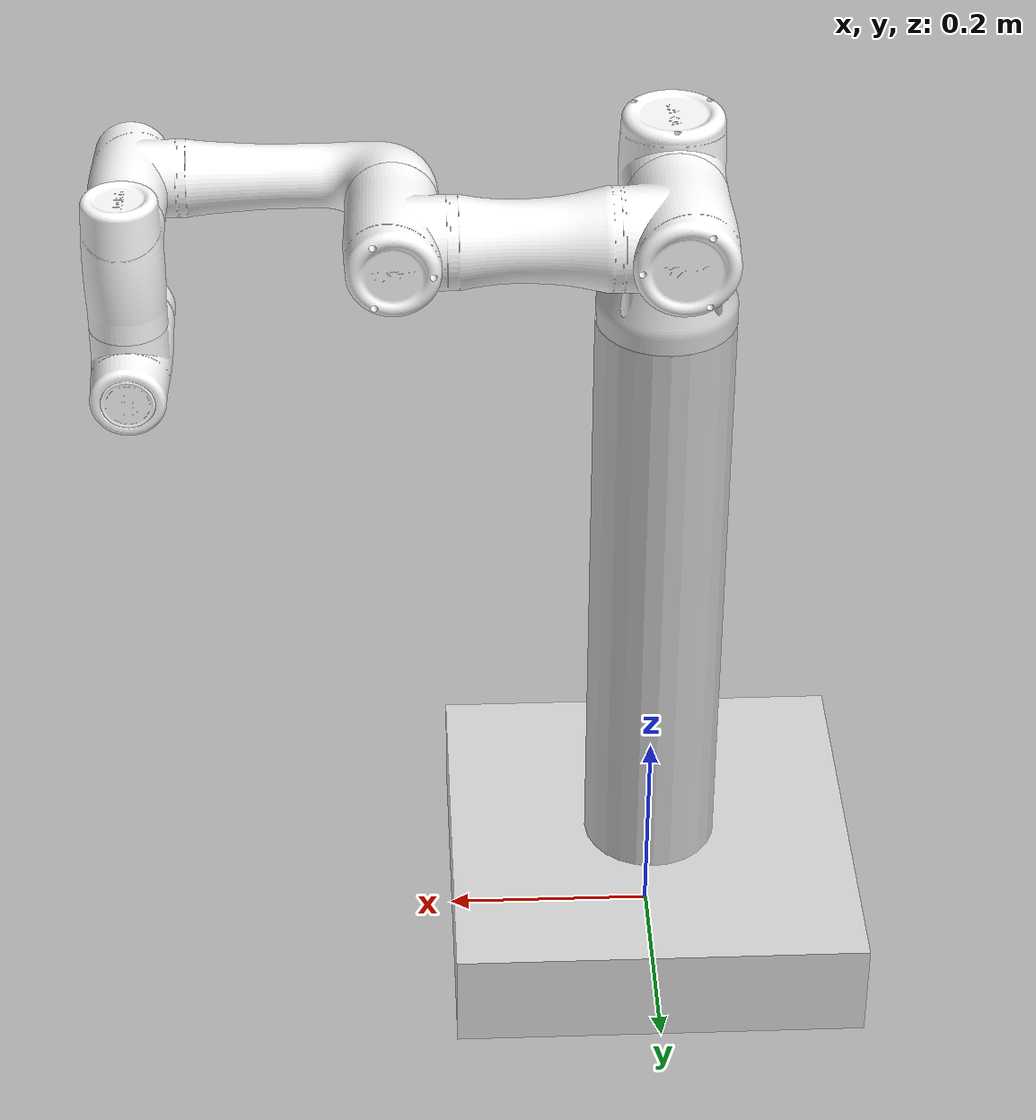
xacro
<?xml version="1.0" encoding="utf-8"?>
<robot name="jaka_zu3" xmlns:xacro="http://www.ros.org/wiki/xacro">
  <xacro:include filename="gazebo_control.xacro" />
  <xacro:include filename="camera_gazebo.xacro" />

  <link name="world" />

  <joint name="world_joint" type="fixed">
    <parent link="world" />
    <child link = "base_footprint" />
    <origin xyz="0.0 0.0 0.0" rpy="0.0 0.0 0.0" />
  </joint>

  <link name="base_footprint">
    <visual>
      <geometry>
        <sphere radius="0.001" />
      </geometry>
      <oringin xyz="0 0 0" rpy="0 0 0" />
    </visual>
  </link>
  <gazebo reference="base_footprint">
    <meterial>Gazebo/Grey</meterial>
  </gazebo>

  <link name="plain_link" >
    <visual>
      <origin xyz="0 0 0" rpy="0 0 0" />
      <geometry>
        <box size="0.4 0.4 0.1" />
        <origin xyz="0 0 0" rpy="0 0 0" />
      </geometry>
      <material
        name="plaincolor">
        <color rgba="0.84706 0.84706 0.84706 1" />
      </material>
    </visual>
    <collision>
      <origin xyz="0 0 0" rpy="0 0 0" />
      <geometry>
        <box size="0.4 0.4 0.1" />
      </geometry>
    </collision>
    <inertial>
      <origin xyz="0 0 0" rpy="0 0 0" />
      <mass value="50.0" />
      <inertia ixx="0.70833" ixy="0.0" ixz="0.0"
               iyy="1.33333" iyz="0.0" izz="0.70833" />
    </inertial>
  </link>
  <gazebo reference="plain_link">
    <meterial>Gazebo/Grey</meterial>
  </gazebo>

  <joint name="base2plain" type="fixed">
    <parent link="base_footprint" />
    <child link="plain_link" />
    <origin xyz="0 0 0.05" rpy="0 0 0" />
  </joint>

  <link name="cylinder_link">
    <visual>
      <geometry>
        <cylinder radius="0.065" length="0.6" />
      </geometry>
      <origin xyz="0 0 0" rpy="0 0 0" />
      <material name="gray">
        <color rgba="0.8 0.8 0.8 1" />
      </material>
    </visual>
    <collision>
      <geometry>
        <cylinder radius="0.065" length="0.6" />
      </geometry>
      <origin xyz="0 0 0" rpy="0 0 0" />
    </collision>
    <inertial>
      <origin xyz="0 0 0" rpy="0 0 0" />
      <mass value="20.0" />
      <inertia ixx="0.621125" ixy="0.0" ixz="0.0"
               iyy="0.621125" iyz="0.0" izz="4.225" />
    </inertial>
  </link>
  <gazebo reference="plain_link">
    <meterial>Gazebo/Grey</meterial>
  </gazebo>

  <joint name="plain2cylinder" type="fixed">
    <parent link="plain_link" />
    <child link="cylinder_link" />
    <origin xyz="0 0 0.35" rpy="0 0 0" />
  </joint>

  <link name="Link_0">
    <inertial>
      <origin
          xyz="0 0 0"
          rpy="0 0 0" />
      <mass
          value="0.46393" />
      <inertia
          ixx="0.00064494"
          ixy="-1.0227E-07"
          ixz="-1.0724E-05"
          iyy="0.00065157"
          iyz="3.7859E-07"
          izz="0.00083278" />
    </inertial>
    <visual>
      <origin xyz="0.0 0.0 0" rpy="0 0 0" />
      <geometry>
        <mesh filename="package://jaka_zu3_myurdf/meshes/visual/Link_0.dae" />
      </geometry>
      <material
        name="Link_0Color">
        <color
          rgba="0.84706 0.84706 0.84706 1" />
      </material>
    </visual>
    <collision>
      <origin xyz="0 0 0" rpy="0 0 0" />
      <geometry>
        <mesh filename="package://jaka_zu3_myurdf/meshes/collision/Link_0.STL" />
      </geometry>
    </collision>
  </link>
  <gazebo reference="Link_0">
    <meterial>Gazebo/Grey</meterial>
  </gazebo>

  <joint name="cylinder2base" type="fixed">
    <parent link="cylinder_link" />
    <child link="Link_0" />
    <origin xyz="0 0 0.3" rpy="0 0 0" />
  </joint>

  <link name="Link_1">
    <inertial>
        <origin
          xyz="0 0 0"
          rpy="0 0 0" />
        <mass
          value="0.88365" />
        <inertia
          ixx="0.0015634"
          ixy="1.5495E-08"
          ixz="5.6443E-09"
          iyy="0.0015047"
          iyz="-9.0168E-06"
          izz="0.0010527" />
      </inertial>

    <visual>
      <origin xyz="0 0 0" rpy="0 0 0" />
      <geometry>
        <mesh filename="package://jaka_zu3_myurdf/meshes/visual/Link_1.dae" />
      </geometry>
      <material
        name="Link_1Color">
        <color
          rgba="1 1 1 1" />
      </material>
    </visual>
    <collision>
      <origin xyz="0 0 0" rpy="0 0 0" />
      <geometry>
        <mesh filename="package://jaka_zu3_myurdf/meshes/collision/Link_1.STL" />
      </geometry>
    </collision>
  </link>
  <gazebo reference="Link_1">
    <meterial>Gazebo/Grey</meterial>
  </gazebo>

  <joint name="joint_1" type="revolute">
    <origin xyz="0 0 0.15055" rpy="0 0 0" />
    <parent link="Link_0" />
    <child link="Link_1" />
    <axis xyz="0 0 1" />
    <limit
      lower="-4.71"
      upper="4.71"
      effort="300"
      velocity="3.14" />
    <dynamics
      damping="50"
      friction="1" />
  </joint>
  <transmission name="trans1">
    <type>transmission_interface/SimpleTransmission</type>
    <joint name="joint_1">
      <hardwareInterface>hardware_interface/EffortJointInterface</hardwareInterface>
    </joint>
    <actuator name="motor1">
      <hardwareInterface>hardware_interface/EffortJointInterface</hardwareInterface>
      <mechanicalReduction>1</mechanicalReduction>
    </actuator>
  </transmission>

  <link name="Link_2">
    <inertial>
        <origin
          xyz="0.114 -5.5358E-07 -0.11162"
          rpy="0 0 0" />
        <mass
          value="2.3202" />
        <inertia
          ixx="1"
          ixy="0"
          ixz="0"
          iyy="1"
          iyz="0"
          izz="1" />
      </inertial>
    <visual>
      <origin xyz="0 0 0" rpy="0 0 0" />
      <geometry>
        <mesh filename="package://jaka_zu3_myurdf/meshes/visual/Link_2.dae" />
      </geometry>
      <material
        name="Link_2Color">
        <color
          rgba="1 1 1 1" />
      </material>
    </visual>
    <collision>
      <origin xyz="0 0 0" rpy="0 0 0" />
      <geometry>
        <mesh filename="package://jaka_zu3_myurdf/meshes/collision/Link_2.STL" />
      </geometry>
    </collision>
  </link>
  <gazebo reference="Link_2">
    <meterial>Gazebo/Grey</meterial>
  </gazebo>

  <joint name="joint_2" type="revolute">
    <origin xyz="0 0 0" rpy="1.5708 0 0" />
    <parent link="Link_1" />
    <child link="Link_2" />
    <axis xyz="0 0 1" />
    <limit
      lower="-1.48"
      upper="4.62"
      effort="300"
      velocity="3.14" />
    <dynamics
      damping="50"
      friction="1" />
  </joint>
  <transmission name="trans2">
    <type>transmission_interface/SimpleTransmission</type>
    <joint name="joint_2">
      <hardwareInterface>hardware_interface/EffortJointInterface</hardwareInterface>
    </joint>
    <actuator name="motor2">
      <hardwareInterface>hardware_interface/EffortJointInterface</hardwareInterface>
      <mechanicalReduction>1</mechanicalReduction>
    </actuator>
  </transmission>

  <link name="Link_3">
    <inertial>
        <origin
          xyz="0 0 0"
          rpy="0 0 0" />
        <mass
          value="1.2034" />
        <inertia
          ixx="1"
          ixy="0"
          ixz="0"
          iyy="1"
          iyz="0"
          izz="1" />
      </inertial>

    <visual>
      <origin xyz="0 0 0" rpy="0 0 0" />
      <geometry>
        <mesh filename="package://jaka_zu3_myurdf/meshes/visual/Link_3.dae" />
      </geometry>
      <material
        name="Link_3Color">
        <color
          rgba="1 1 1 1" />
      </material>
    </visual>
    <collision>
      <origin xyz="0 0 0" rpy="0 0 0" />
      <geometry>
        <mesh filename="package://jaka_zu3_myurdf/meshes/collision/Link_3.STL" />
      </geometry>
    </collision>
  </link>
  <gazebo reference="Link_3">
    <meterial>Gazebo/Grey</meterial>
  </gazebo>

  <joint name="joint_3" type="revolute">
    <origin xyz="0.246 0 0" rpy="0 0 0" />
    <parent link="Link_2" />
    <child link="Link_3" />
    <axis xyz="0 0 1" />
    <limit lower="-3.05" upper="3.05" effort="330" velocity="3.14" />
    <dynamics damping="50" friction="1" />
  </joint>
  <transmission name="trans3">
    <type>transmission_interface/SimpleTransmission</type>
    <joint name="joint_3">
      <hardwareInterface>hardware_interface/EffortJointInterface</hardwareInterface>
    </joint>
    <actuator name="motor3">
      <hardwareInterface>hardware_interface/EffortJointInterface</hardwareInterface>
      <mechanicalReduction>1</mechanicalReduction>
    </actuator>
  </transmission>

  <link name="Link_4">
    <inertial>
        <origin
          xyz="6.5395E-08 -0.014051 0.0031609"
          rpy="0 0 0" />
        <mass
          value="0.49334" />
        <inertia
          ixx="1"
          ixy="0"
          ixz="0"
          iyy="1"
          iyz="0"
          izz="1" />
      </inertial>

    <visual>
      <origin xyz="0 0 0" rpy="0 0 0" />
      <geometry>
        <mesh filename="package://jaka_zu3_myurdf/meshes/visual/Link_4.dae" />
      </geometry>
      <material
        name="Link_4Color">
        <color
          rgba="1 1 1 1" />
      </material>
    </visual>
    <collision>
      <origin xyz="0 0 0" rpy="0 0 0" />
      <geometry>
        <mesh filename="package://jaka_zu3_myurdf/meshes/collision/Link_4.STL" />
      </geometry>
    </collision>
  </link>
  <gazebo reference="Link_4">
    <meterial>Gazebo/Grey</meterial>
  </gazebo>

  <joint name="joint_4" type="revolute">
    <origin xyz="0.228 0 -0.113" rpy="0 0 0" />
    <parent link="Link_3" />
    <child link="Link_4" />
    <axis xyz="0 0 1" />
    <limit lower="-1.48" upper="4.62" effort="330" velocity="3.14" />
    <dynamics damping="50" friction="1" />
  </joint>
  <transmission name="trans4">
    <type>transmission_interface/SimpleTransmission</type>
    <joint name="joint_4">
      <hardwareInterface>hardware_interface/EffortJointInterface</hardwareInterface>
    </joint>
    <actuator name="motor4">
      <hardwareInterface>hardware_interface/EffortJointInterface</hardwareInterface>
      <mechanicalReduction>1</mechanicalReduction>
    </actuator>
  </transmission>

  <link name="Link_5">
    <inertial>
        <origin
          xyz="2.5684E-07 0.0068642 -0.0021581"
          rpy="0 0 0" />
        <mass
          value="0.55082" />
        <inertia
          ixx="1"
          ixy="0"
          ixz="0"
          iyy="1"
          iyz="0"
          izz="1" />
      </inertial>

    <visual>
      <origin xyz="0 0 0" rpy="0 0 0" />
      <geometry>
        <mesh filename="package://jaka_zu3_myurdf/meshes/visual/Link_5.dae" />
      </geometry>
      <material
        name="Link_5Color">
        <color
          rgba="1 1 1 1" />
      </material>
    </visual>
    <collision>
      <origin xyz="0 0 0" rpy="0 0 0" />
      <geometry>
        <mesh filename="package://jaka_zu3_myurdf/meshes/collision/Link_5.STL" />
      </geometry>
    </collision>
  </link>
  <gazebo reference="Link_5">
    <meterial>Gazebo/Grey</meterial>
  </gazebo>

  <joint name="joint_5" type="revolute">
    <origin xyz="0 -0.11675 0" rpy="1.5708 0 0" />
    <parent link="Link_4" />
    <child link="Link_5" />
    <axis xyz="0 0 1" />
    <limit lower="-4.71" upper="4.71" effort="330" velocity="3.83" />
    <dynamics damping="50" friction="1" />
  </joint>
  <transmission name="trans5">
    <type>transmission_interface/SimpleTransmission</type>
    <joint name="joint_5">
      <hardwareInterface>hardware_interface/EffortJointInterface</hardwareInterface>
    </joint>
    <actuator name="motor5">
      <hardwareInterface>hardware_interface/EffortJointInterface</hardwareInterface>
      <mechanicalReduction>1</mechanicalReduction>
    </actuator>
  </transmission>

  <link name="Link_6">
    <inertial>
        <origin
          xyz="5.2572E-05 -0.0001007 -0.0091035"
          rpy="0 0 0" />
        <mass
          value="0.094884" />
        <inertia
          ixx="1"
          ixy="0"
          ixz="0"
          iyy="1"
          iyz="0"
          izz="1" />
      </inertial>

    <visual>
      <origin xyz="0 0 0" rpy="0 0 0" />
      <geometry>
        <mesh filename="package://jaka_zu3_myurdf/meshes/visual/Link_6.dae" />
      </geometry>
      <material
        name="Link_6Color">
        <color
          rgba="1 1 1 1" />
      </material>
    </visual>
    <collision>
      <origin xyz="0 0 0" rpy="0 0 0" />
      <geometry>
        <mesh filename="package://jaka_zu3_myurdf/meshes/collision/Link_6.STL" />
      </geometry>
    </collision>
  </link>
  <gazebo reference="Link_6">
    <meterial>Gazebo/Grey</meterial>
  </gazebo>

  <joint name="joint_6" type="revolute">
    <origin
      xyz="0 0.0985 0"
      rpy="-1.5708 0 0" />
    <parent link="Link_5" />
    <child link="Link_6" />
    <axis xyz="0 0 -1" />
    <limit lower="-6.283185" upper="6.283185" effort="330" velocity="3.14" />
    <dynamics damping="50" friction="1" />
  </joint>
  <transmission name="trans6">
    <type>transmission_interface/SimpleTransmission</type>
    <joint name="joint_6">
      <hardwareInterface>hardware_interface/EffortJointInterface</hardwareInterface>
    </joint>
    <actuator name="motor6">
      <hardwareInterface>hardware_interface/EffortJointInterface</hardwareInterface>
      <mechanicalReduction>1</mechanicalReduction>
    </actuator>
  </transmission>

  <joint name="camera_joint" type="fixed">
    <axis xyz="0 1 0" />
    <origin xyz="0 0 0" rpy="0 0 0"/>
    <parent link="Link_6"/>
    <child link="camera_link"/>
  </joint>

  <!-- Camera -->
  <link name="camera_link">
    <collision>
      <origin xyz="0 0 0" rpy="0 0 0"/>
      <geometry>
    <box size="0.02 0.02 0.02"/>
      </geometry>
    </collision>

    <visual>
      <origin xyz="0 0 0" rpy="0 0 0"/>
      <geometry>
    <box size="0.02 0.02 0.02"/>
      </geometry>
      <material name="red"/>
    </visual>

    <inertial>
      <mass value="1e-5" />
      <origin xyz="0 0 0" rpy="0 0 0"/>
      <inertia ixx="1e-6" ixy="0" ixz="0" iyy="1e-6" iyz="0" izz="1e-6" />
    </inertial>
  </link>

  <!-- End effector -->
  <joint name="ee_joint" type="fixed">
    <axis xyz="0 1 0" />
    <origin xyz="0 0 0" rpy="0 0 0"/>
    <parent link="Link_6"/>
    <child link="ee_link"/>
  </joint>

  <link name="ee_link">
    <collision>
      <geometry>
        <box size="0.01 0.01 0.01"/>
      </geometry>
      <origin rpy="0 0 0" xyz="-0.01 0 0"/>
    </collision>
  </link>

  <!-- ROS base_link to UR 'Base' Coordinates transform -->
    <!-- NOTE: this rotation is only needed as long as base_link itself is
               not corrected wrt the real robot (ie: rotated over 180
               degrees)
    -->

</robot>
